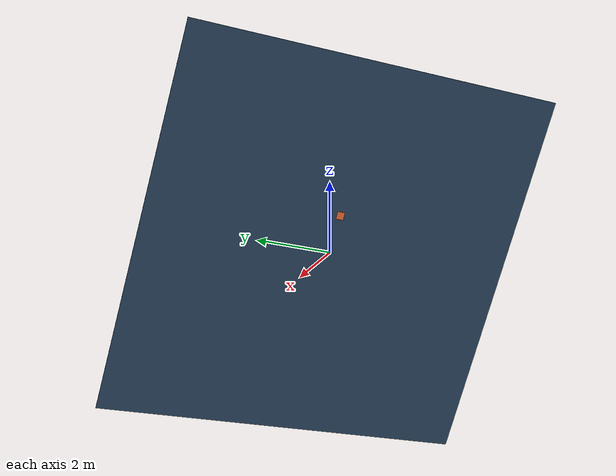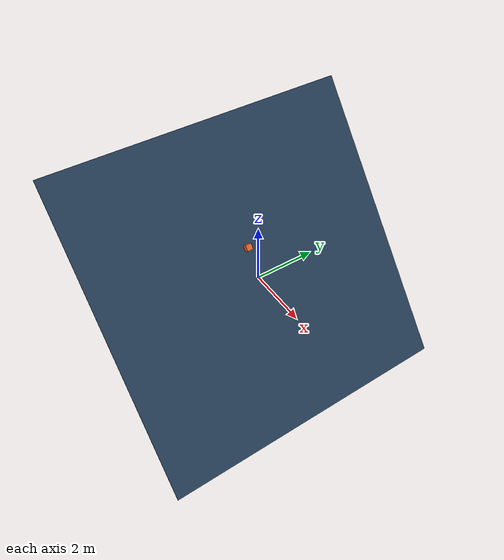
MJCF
<mujoco model="inclined_box">
  <option gravity="0 0 -9.81" timestep="0.002"/>
  <asset>
    <texture type="2d" name="groundplane" builtin="checker" mark="edge"
             rgb1="0.2 0.3 0.4" rgb2="0.1 0.2 0.3" markrgb="0.8 0.8 0.8"
             width="300" height="300"/>
    <material name="groundplane" texture="groundplane" texuniform="true"
              texrepeat="5 5" reflectance="0.2"/>
  </asset>
  <worldbody>
    <light pos="0 0 4" dir="0 0 -1" directional="true"/>
    <!-- 50deg inclination: tan(50deg)~1.19 > mu=1, box slides -->
    <geom name="inclined_floor" type="plane" size="5 5 0.1" euler="0 50 0"
          material="groundplane" friction="1 0.005 0.0001"/>
    <!-- box center placed on slope surface, 1m up from origin, aligned with floor -->
    <body name="box" pos="-0.57 0 0.83" euler="0 50 0">
      <freejoint name="box_joint"/>
      <geom name="box_geom" type="box" size="0.1 0.1 0.1" mass="1" rgba="0.9 0.4 0.2 1"
            friction="1 0.005 0.0001"/>
    </body>
  </worldbody>
</mujoco>
